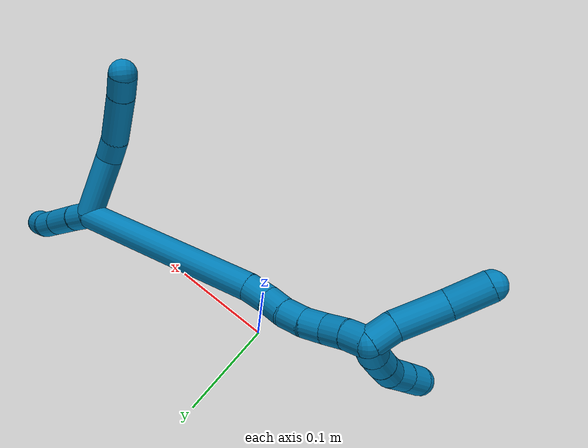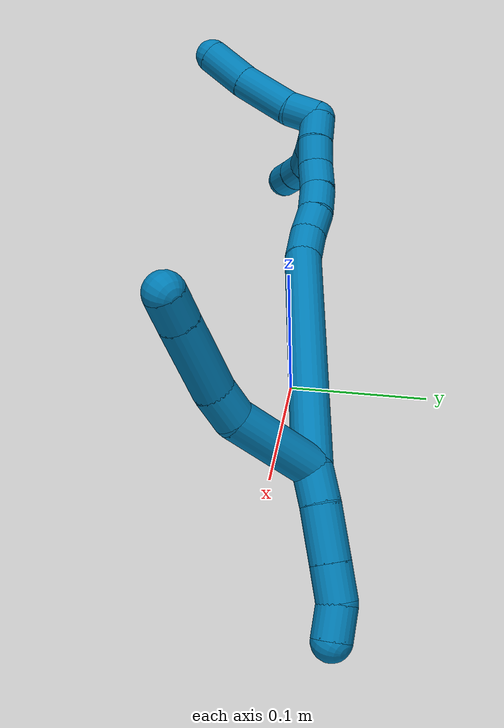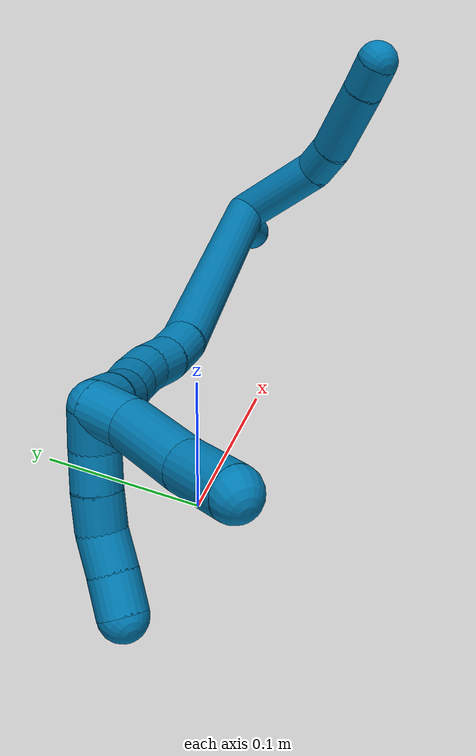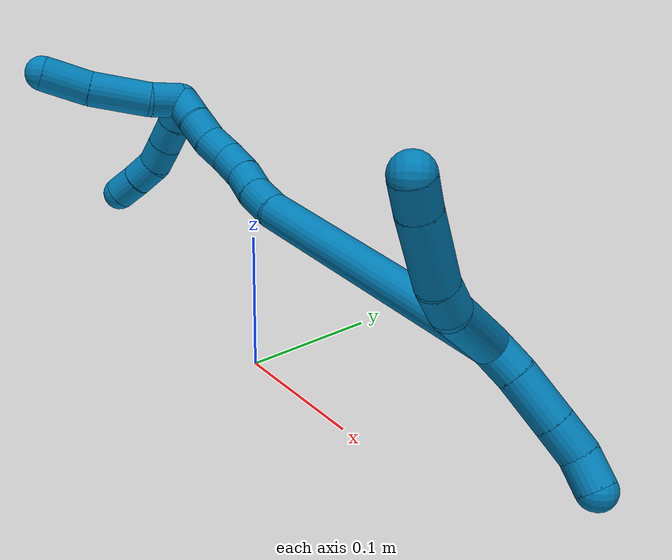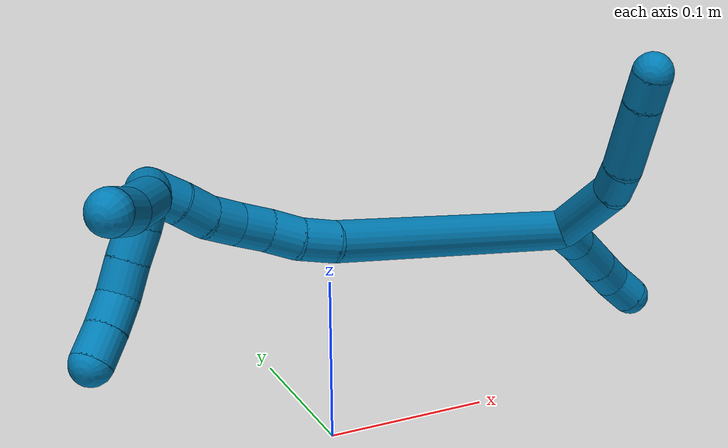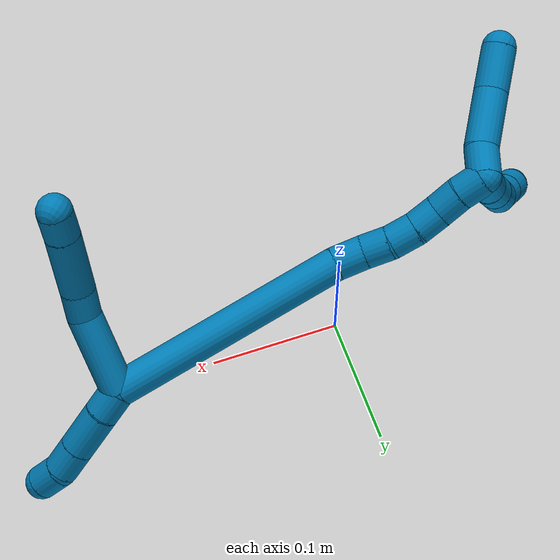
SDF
<sdf version="1.7">
 <world name="default">
  <model name="9">
   <static>0</static>
   <link name="9">
    <collision name="collision-cylinder-e_1_2_8">
     <pose>0.00694 -0.025617 -0.013112 2.04388 0.23663 0.383974</pose>
     <geometry><cylinder><radius>0.0125</radius><length>0.059206</length></cylinder></geometry>
     <surface>
      <friction><ode><mu>1.16</mu><mu2>1.16</mu2><slip1>0</slip1><slip2>0</slip2></ode></friction>
      <contact><ode><kp>1e+06</kp><kd>1</kd><max_vel>0</max_vel><min_depth>0.001</min_depth></ode></contact>
     </surface>
    </collision>
    <visual name="visual-cylinder-e_1_2_8">
     <pose>0.00694 -0.025617 -0.013112 2.04388 0.23663 0.383974</pose>
     <geometry><cylinder><radius>0.0125</radius><length>0.059206</length></cylinder></geometry>
     <material><ambient>0 0.490196 0.709804 1</ambient></material>
    </visual>
    <collision name="collision-cylinder-e_2_8_9">
     <pose>0.012888 -0.061169 -0.030332 1.96285 -0.091965 -0.137419</pose>
     <geometry><cylinder><radius>0.0125</radius><length>0.021592</length></cylinder></geometry>
     <surface>
      <friction><ode><mu>1.16</mu><mu2>1.16</mu2><slip1>0</slip1><slip2>0</slip2></ode></friction>
      <contact><ode><kp>1e+06</kp><kd>1</kd><max_vel>0</max_vel><min_depth>0.001</min_depth></ode></contact>
     </surface>
    </collision>
    <visual name="visual-cylinder-e_2_8_9">
     <pose>0.012888 -0.061169 -0.030332 1.96285 -0.091965 -0.137419</pose>
     <geometry><cylinder><radius>0.0125</radius><length>0.021592</length></cylinder></geometry>
     <material><ambient>0 0.490196 0.709804 1</ambient></material>
    </visual>
    <collision name="collision-cylinder-e_3_9_10">
     <pose>0.007114 -0.093911 -0.040374 1.82534 -0.200213 -0.258392</pose>
     <geometry><cylinder><radius>0.0125</radius><length>0.048094</length></cylinder></geometry>
     <surface>
      <friction><ode><mu>1.16</mu><mu2>1.16</mu2><slip1>0</slip1><slip2>0</slip2></ode></friction>
      <contact><ode><kp>1e+06</kp><kd>1</kd><max_vel>0</max_vel><min_depth>0.001</min_depth></ode></contact>
     </surface>
    </collision>
    <visual name="visual-cylinder-e_3_9_10">
     <pose>0.007114 -0.093911 -0.040374 1.82534 -0.200213 -0.258392</pose>
     <geometry><cylinder><radius>0.0125</radius><length>0.048094</length></cylinder></geometry>
     <material><ambient>0 0.490196 0.709804 1</ambient></material>
    </visual>
    <collision name="collision-cylinder-e_4_10_6">
     <pose>0.000243 -0.126847 -0.048413 1.77571 -0.199264 -0.244524</pose>
     <geometry><cylinder><radius>0.0125</radius><length>0.021108</length></cylinder></geometry>
     <surface>
      <friction><ode><mu>1.16</mu><mu2>1.16</mu2><slip1>0</slip1><slip2>0</slip2></ode></friction>
      <contact><ode><kp>1e+06</kp><kd>1</kd><max_vel>0</max_vel><min_depth>0.001</min_depth></ode></contact>
     </surface>
    </collision>
    <visual name="visual-cylinder-e_4_10_6">
     <pose>0.000243 -0.126847 -0.048413 1.77571 -0.199264 -0.244524</pose>
     <geometry><cylinder><radius>0.0125</radius><length>0.021108</length></cylinder></geometry>
     <material><ambient>0 0.490196 0.709804 1</ambient></material>
    </visual>
    <collision name="collision-cylinder-e_1_2_11">
     <pose>0.006203 0.004702 0.007767 -0.544374 0.599309 -0.172043</pose>
     <geometry><cylinder><radius>0.0125</radius><length>0.021992</length></cylinder></geometry>
     <surface>
      <friction><ode><mu>1.16</mu><mu2>1.16</mu2><slip1>0</slip1><slip2>0</slip2></ode></friction>
      <contact><ode><kp>1e+06</kp><kd>1</kd><max_vel>0</max_vel><min_depth>0.001</min_depth></ode></contact>
     </surface>
    </collision>
    <visual name="visual-cylinder-e_1_2_11">
     <pose>0.006203 0.004702 0.007767 -0.544374 0.599309 -0.172043</pose>
     <geometry><cylinder><radius>0.0125</radius><length>0.021992</length></cylinder></geometry>
     <material><ambient>0 0.490196 0.709804 1</ambient></material>
    </visual>
    <collision name="collision-cylinder-e_2_11_12">
     <pose>0.022572 0.017497 0.02645 -0.63794 0.642358 -0.218867</pose>
     <geometry><cylinder><radius>0.0125</radius><length>0.033941</length></cylinder></geometry>
     <surface>
      <friction><ode><mu>1.16</mu><mu2>1.16</mu2><slip1>0</slip1><slip2>0</slip2></ode></friction>
      <contact><ode><kp>1e+06</kp><kd>1</kd><max_vel>0</max_vel><min_depth>0.001</min_depth></ode></contact>
     </surface>
    </collision>
    <visual name="visual-cylinder-e_2_11_12">
     <pose>0.022572 0.017497 0.02645 -0.63794 0.642358 -0.218867</pose>
     <geometry><cylinder><radius>0.0125</radius><length>0.033941</length></cylinder></geometry>
     <material><ambient>0 0.490196 0.709804 1</ambient></material>
    </visual>
    <collision name="collision-cylinder-e_3_12_13">
     <pose>0.039698 0.03109 0.044749 -0.640301 0.647201 -0.221491</pose>
     <geometry><cylinder><radius>0.0125</radius><length>0.023082</length></cylinder></geometry>
     <surface>
      <friction><ode><mu>1.16</mu><mu2>1.16</mu2><slip1>0</slip1><slip2>0</slip2></ode></friction>
      <contact><ode><kp>1e+06</kp><kd>1</kd><max_vel>0</max_vel><min_depth>0.001</min_depth></ode></contact>
     </surface>
    </collision>
    <visual name="visual-cylinder-e_3_12_13">
     <pose>0.039698 0.03109 0.044749 -0.640301 0.647201 -0.221491</pose>
     <geometry><cylinder><radius>0.0125</radius><length>0.023082</length></cylinder></geometry>
     <material><ambient>0 0.490196 0.709804 1</ambient></material>
    </visual>
    <collision name="collision-cylinder-e_4_13_5">
     <pose>0.055307 0.040361 0.056719 -0.688153 0.969307 -0.372966</pose>
     <geometry><cylinder><radius>0.0125</radius><length>0.020984</length></cylinder></geometry>
     <surface>
      <friction><ode><mu>1.16</mu><mu2>1.16</mu2><slip1>0</slip1><slip2>0</slip2></ode></friction>
      <contact><ode><kp>1e+06</kp><kd>1</kd><max_vel>0</max_vel><min_depth>0.001</min_depth></ode></contact>
     </surface>
    </collision>
    <visual name="visual-cylinder-e_4_13_5">
     <pose>0.055307 0.040361 0.056719 -0.688153 0.969307 -0.372966</pose>
     <geometry><cylinder><radius>0.0125</radius><length>0.020984</length></cylinder></geometry>
     <material><ambient>0 0.490196 0.709804 1</ambient></material>
    </visual>
    <collision name="collision-cylinder-e_1_2_14">
     <pose>-0.055523 0.008869 -0.068475 -3.01278 -0.677256 2.77936</pose>
     <geometry><cylinder><radius>0.0125</radius><length>0.177204</length></cylinder></geometry>
     <surface>
      <friction><ode><mu>1.16</mu><mu2>1.16</mu2><slip1>0</slip1><slip2>0</slip2></ode></friction>
      <contact><ode><kp>1e+06</kp><kd>1</kd><max_vel>0</max_vel><min_depth>0.001</min_depth></ode></contact>
     </surface>
    </collision>
    <visual name="visual-cylinder-e_1_2_14">
     <pose>-0.055523 0.008869 -0.068475 -3.01278 -0.677256 2.77936</pose>
     <geometry><cylinder><radius>0.0125</radius><length>0.177204</length></cylinder></geometry>
     <material><ambient>0 0.490196 0.709804 1</ambient></material>
    </visual>
    <collision name="collision-cylinder-e_2_14_15">
     <pose>-0.11959 0.018881 -0.144133 -2.98388 -0.865608 2.80281</pose>
     <geometry><cylinder><radius>0.0125</radius><length>0.02244</length></cylinder></geometry>
     <surface>
      <friction><ode><mu>1.16</mu><mu2>1.16</mu2><slip1>0</slip1><slip2>0</slip2></ode></friction>
      <contact><ode><kp>1e+06</kp><kd>1</kd><max_vel>0</max_vel><min_depth>0.001</min_depth></ode></contact>
     </surface>
    </collision>
    <visual name="visual-cylinder-e_2_14_15">
     <pose>-0.11959 0.018881 -0.144133 -2.98388 -0.865608 2.80281</pose>
     <geometry><cylinder><radius>0.0125</radius><length>0.02244</length></cylinder></geometry>
     <material><ambient>0 0.490196 0.709804 1</ambient></material>
    </visual>
    <collision name="collision-cylinder-e_3_15_16">
     <pose>-0.136757 0.020062 -0.15642 -3.13411 -1.03619 3.12847</pose>
     <geometry><cylinder><radius>0.0125</radius><length>0.020041</length></cylinder></geometry>
     <surface>
      <friction><ode><mu>1.16</mu><mu2>1.16</mu2><slip1>0</slip1><slip2>0</slip2></ode></friction>
      <contact><ode><kp>1e+06</kp><kd>1</kd><max_vel>0</max_vel><min_depth>0.001</min_depth></ode></contact>
     </surface>
    </collision>
    <visual name="visual-cylinder-e_3_15_16">
     <pose>-0.136757 0.020062 -0.15642 -3.13411 -1.03619 3.12847</pose>
     <geometry><cylinder><radius>0.0125</radius><length>0.020041</length></cylinder></geometry>
     <material><ambient>0 0.490196 0.709804 1</ambient></material>
    </visual>
    <collision name="collision-cylinder-e_4_16_17">
     <pose>-0.152986 0.019695 -0.168173 3.08074 -0.851718 -3.00761</pose>
     <geometry><cylinder><radius>0.0125</radius><length>0.020221</length></cylinder></geometry>
     <surface>
      <friction><ode><mu>1.16</mu><mu2>1.16</mu2><slip1>0</slip1><slip2>0</slip2></ode></friction>
      <contact><ode><kp>1e+06</kp><kd>1</kd><max_vel>0</max_vel><min_depth>0.001</min_depth></ode></contact>
     </surface>
    </collision>
    <visual name="visual-cylinder-e_4_16_17">
     <pose>-0.152986 0.019695 -0.168173 3.08074 -0.851718 -3.00761</pose>
     <geometry><cylinder><radius>0.0125</radius><length>0.020221</length></cylinder></geometry>
     <material><ambient>0 0.490196 0.709804 1</ambient></material>
    </visual>
    <collision name="collision-cylinder-e_5_17_18">
     <pose>-0.167249 0.017859 -0.182174 2.94937 -0.726333 -2.64468</pose>
     <geometry><cylinder><radius>0.0125</radius><length>0.020041</length></cylinder></geometry>
     <surface>
      <friction><ode><mu>1.16</mu><mu2>1.16</mu2><slip1>0</slip1><slip2>0</slip2></ode></friction>
      <contact><ode><kp>1e+06</kp><kd>1</kd><max_vel>0</max_vel><min_depth>0.001</min_depth></ode></contact>
     </surface>
    </collision>
    <visual name="visual-cylinder-e_5_17_18">
     <pose>-0.167249 0.017859 -0.182174 2.94937 -0.726333 -2.64468</pose>
     <geometry><cylinder><radius>0.0125</radius><length>0.020041</length></cylinder></geometry>
     <material><ambient>0 0.490196 0.709804 1</ambient></material>
    </visual>
    <collision name="collision-cylinder-e_6_18_19">
     <pose>-0.181175 0.01343 -0.195723 2.69098 -0.812889 -2.16296</pose>
     <geometry><cylinder><radius>0.0125</radius><length>0.020024</length></cylinder></geometry>
     <surface>
      <friction><ode><mu>1.16</mu><mu2>1.16</mu2><slip1>0</slip1><slip2>0</slip2></ode></friction>
      <contact><ode><kp>1e+06</kp><kd>1</kd><max_vel>0</max_vel><min_depth>0.001</min_depth></ode></contact>
     </surface>
    </collision>
    <visual name="visual-cylinder-e_6_18_19">
     <pose>-0.181175 0.01343 -0.195723 2.69098 -0.812889 -2.16296</pose>
     <geometry><cylinder><radius>0.0125</radius><length>0.020024</length></cylinder></geometry>
     <material><ambient>0 0.490196 0.709804 1</ambient></material>
    </visual>
    <collision name="collision-cylinder-e_7_19_1">
     <pose>-0.196271 0.008424 -0.207836 2.81431 -0.896786 -2.48034</pose>
     <geometry><cylinder><radius>0.0125</radius><length>0.020028</length></cylinder></geometry>
     <surface>
      <friction><ode><mu>1.16</mu><mu2>1.16</mu2><slip1>0</slip1><slip2>0</slip2></ode></friction>
      <contact><ode><kp>1e+06</kp><kd>1</kd><max_vel>0</max_vel><min_depth>0.001</min_depth></ode></contact>
     </surface>
    </collision>
    <visual name="visual-cylinder-e_7_19_1">
     <pose>-0.196271 0.008424 -0.207836 2.81431 -0.896786 -2.48034</pose>
     <geometry><cylinder><radius>0.0125</radius><length>0.020028</length></cylinder></geometry>
     <material><ambient>0 0.490196 0.709804 1</ambient></material>
    </visual>
    <collision name="collision-cylinder-e_1_1_20">
     <pose>-0.200428 0.002956 -0.22398 2.8155 0.327506 1.57519</pose>
     <geometry><cylinder><radius>0.0125</radius><length>0.022801</length></cylinder></geometry>
     <surface>
      <friction><ode><mu>1.16</mu><mu2>1.16</mu2><slip1>0</slip1><slip2>0</slip2></ode></friction>
      <contact><ode><kp>1e+06</kp><kd>1</kd><max_vel>0</max_vel><min_depth>0.001</min_depth></ode></contact>
     </surface>
    </collision>
    <visual name="visual-cylinder-e_1_1_20">
     <pose>-0.200428 0.002956 -0.22398 2.8155 0.327506 1.57519</pose>
     <geometry><cylinder><radius>0.0125</radius><length>0.022801</length></cylinder></geometry>
     <material><ambient>0 0.490196 0.709804 1</ambient></material>
    </visual>
    <collision name="collision-cylinder-e_2_20_21">
     <pose>-0.195005 -0.006641 -0.25493 2.85358 0.081037 0.545227</pose>
     <geometry><cylinder><radius>0.0125</radius><length>0.043371</length></cylinder></geometry>
     <surface>
      <friction><ode><mu>1.16</mu><mu2>1.16</mu2><slip1>0</slip1><slip2>0</slip2></ode></friction>
      <contact><ode><kp>1e+06</kp><kd>1</kd><max_vel>0</max_vel><min_depth>0.001</min_depth></ode></contact>
     </surface>
    </collision>
    <visual name="visual-cylinder-e_2_20_21">
     <pose>-0.195005 -0.006641 -0.25493 2.85358 0.081037 0.545227</pose>
     <geometry><cylinder><radius>0.0125</radius><length>0.043371</length></cylinder></geometry>
     <material><ambient>0 0.490196 0.709804 1</ambient></material>
    </visual>
    <collision name="collision-cylinder-e_3_21_4">
     <pose>-0.193106 -0.01953 -0.291162 2.73111 0.00849 0.040776</pose>
     <geometry><cylinder><radius>0.0125</radius><length>0.033828</length></cylinder></geometry>
     <surface>
      <friction><ode><mu>1.16</mu><mu2>1.16</mu2><slip1>0</slip1><slip2>0</slip2></ode></friction>
      <contact><ode><kp>1e+06</kp><kd>1</kd><max_vel>0</max_vel><min_depth>0.001</min_depth></ode></contact>
     </surface>
    </collision>
    <visual name="visual-cylinder-e_3_21_4">
     <pose>-0.193106 -0.01953 -0.291162 2.73111 0.00849 0.040776</pose>
     <geometry><cylinder><radius>0.0125</radius><length>0.033828</length></cylinder></geometry>
     <material><ambient>0 0.490196 0.709804 1</ambient></material>
    </visual>
    <collision name="collision-cylinder-e_1_1_22">
     <pose>-0.201402 0.015481 -0.217002 -1.91474 0.272676 -0.3849</pose>
     <geometry><cylinder><radius>0.0125</radius><length>0.02</length></cylinder></geometry>
     <surface>
      <friction><ode><mu>1.16</mu><mu2>1.16</mu2><slip1>0</slip1><slip2>0</slip2></ode></friction>
      <contact><ode><kp>1e+06</kp><kd>1</kd><max_vel>0</max_vel><min_depth>0.001</min_depth></ode></contact>
     </surface>
    </collision>
    <visual name="visual-cylinder-e_1_1_22">
     <pose>-0.201402 0.015481 -0.217002 -1.91474 0.272676 -0.3849</pose>
     <geometry><cylinder><radius>0.0125</radius><length>0.02</length></cylinder></geometry>
     <material><ambient>0 0.490196 0.709804 1</ambient></material>
    </visual>
    <collision name="collision-cylinder-e_2_22_23">
     <pose>-0.196536 0.033108 -0.22494 -2.07207 0.219061 -0.367133</pose>
     <geometry><cylinder><radius>0.0125</radius><length>0.02</length></cylinder></geometry>
     <surface>
      <friction><ode><mu>1.16</mu><mu2>1.16</mu2><slip1>0</slip1><slip2>0</slip2></ode></friction>
      <contact><ode><kp>1e+06</kp><kd>1</kd><max_vel>0</max_vel><min_depth>0.001</min_depth></ode></contact>
     </surface>
    </collision>
    <visual name="visual-cylinder-e_2_22_23">
     <pose>-0.196536 0.033108 -0.22494 -2.07207 0.219061 -0.367133</pose>
     <geometry><cylinder><radius>0.0125</radius><length>0.02</length></cylinder></geometry>
     <material><ambient>0 0.490196 0.709804 1</ambient></material>
    </visual>
    <collision name="collision-cylinder-e_3_23_24">
     <pose>-0.1916 0.050009 -0.234405 -2.09064 0.279866 -0.476594</pose>
     <geometry><cylinder><radius>0.0125</radius><length>0.02</length></cylinder></geometry>
     <surface>
      <friction><ode><mu>1.16</mu><mu2>1.16</mu2><slip1>0</slip1><slip2>0</slip2></ode></friction>
      <contact><ode><kp>1e+06</kp><kd>1</kd><max_vel>0</max_vel><min_depth>0.001</min_depth></ode></contact>
     </surface>
    </collision>
    <visual name="visual-cylinder-e_3_23_24">
     <pose>-0.1916 0.050009 -0.234405 -2.09064 0.279866 -0.476594</pose>
     <geometry><cylinder><radius>0.0125</radius><length>0.02</length></cylinder></geometry>
     <material><ambient>0 0.490196 0.709804 1</ambient></material>
    </visual>
    <collision name="collision-cylinder-e_4_24_25">
     <pose>-0.186327 0.064536 -0.246625 -2.44837 0.253822 -0.679159</pose>
     <geometry><cylinder><radius>0.0125</radius><length>0.02</length></cylinder></geometry>
     <surface>
      <friction><ode><mu>1.16</mu><mu2>1.16</mu2><slip1>0</slip1><slip2>0</slip2></ode></friction>
      <contact><ode><kp>1e+06</kp><kd>1</kd><max_vel>0</max_vel><min_depth>0.001</min_depth></ode></contact>
     </surface>
    </collision>
    <visual name="visual-cylinder-e_4_24_25">
     <pose>-0.186327 0.064536 -0.246625 -2.44837 0.253822 -0.679159</pose>
     <geometry><cylinder><radius>0.0125</radius><length>0.02</length></cylinder></geometry>
     <material><ambient>0 0.490196 0.709804 1</ambient></material>
    </visual>
    <collision name="collision-cylinder-e_5_25_3">
     <pose>-0.181816 0.076797 -0.261757 -2.47273 0.201337 -0.565783</pose>
     <geometry><cylinder><radius>0.0125</radius><length>0.02</length></cylinder></geometry>
     <surface>
      <friction><ode><mu>1.16</mu><mu2>1.16</mu2><slip1>0</slip1><slip2>0</slip2></ode></friction>
      <contact><ode><kp>1e+06</kp><kd>1</kd><max_vel>0</max_vel><min_depth>0.001</min_depth></ode></contact>
     </surface>
    </collision>
    <visual name="visual-cylinder-e_5_25_3">
     <pose>-0.181816 0.076797 -0.261757 -2.47273 0.201337 -0.565783</pose>
     <geometry><cylinder><radius>0.0125</radius><length>0.02</length></cylinder></geometry>
     <material><ambient>0 0.490196 0.709804 1</ambient></material>
    </visual>
    <collision name="collision-sphere-3">
     <pose>-0.179816 0.082873 -0.269444 0 -0 0</pose>
     <geometry><sphere><radius>0.0125</radius></sphere></geometry>
     <surface>
      <friction><ode><mu>1.16</mu><mu2>1.16</mu2><slip1>0</slip1><slip2>0</slip2></ode></friction>
      <contact><ode><kp>1e+06</kp><kd>1</kd><max_vel>0</max_vel><min_depth>0.001</min_depth></ode></contact>
     </surface>
    </collision>
    <visual name="visual-sphere-3">
     <pose>-0.179816 0.082873 -0.269444 0 -0 0</pose>
     <geometry><sphere><radius>0.0125</radius></sphere></geometry>
     <material><ambient>0 0.490196 0.709804 1</ambient></material>
    </visual>
    <collision name="collision-sphere-25">
     <pose>-0.183816 0.070721 -0.25407 0 -0 0</pose>
     <geometry><sphere><radius>0.0125</radius></sphere></geometry>
     <surface>
      <friction><ode><mu>1.16</mu><mu2>1.16</mu2><slip1>0</slip1><slip2>0</slip2></ode></friction>
      <contact><ode><kp>1e+06</kp><kd>1</kd><max_vel>0</max_vel><min_depth>0.001</min_depth></ode></contact>
     </surface>
    </collision>
    <visual name="visual-sphere-25">
     <pose>-0.183816 0.070721 -0.25407 0 -0 0</pose>
     <geometry><sphere><radius>0.0125</radius></sphere></geometry>
     <material><ambient>0 0.490196 0.709804 1</ambient></material>
    </visual>
    <collision name="collision-sphere-24">
     <pose>-0.188838 0.05835 -0.239179 0 -0 0</pose>
     <geometry><sphere><radius>0.0125</radius></sphere></geometry>
     <surface>
      <friction><ode><mu>1.16</mu><mu2>1.16</mu2><slip1>0</slip1><slip2>0</slip2></ode></friction>
      <contact><ode><kp>1e+06</kp><kd>1</kd><max_vel>0</max_vel><min_depth>0.001</min_depth></ode></contact>
     </surface>
    </collision>
    <visual name="visual-sphere-24">
     <pose>-0.188838 0.05835 -0.239179 0 -0 0</pose>
     <geometry><sphere><radius>0.0125</radius></sphere></geometry>
     <material><ambient>0 0.490196 0.709804 1</ambient></material>
    </visual>
    <collision name="collision-sphere-23">
     <pose>-0.194363 0.041668 -0.229631 0 -0 0</pose>
     <geometry><sphere><radius>0.0125</radius></sphere></geometry>
     <surface>
      <friction><ode><mu>1.16</mu><mu2>1.16</mu2><slip1>0</slip1><slip2>0</slip2></ode></friction>
      <contact><ode><kp>1e+06</kp><kd>1</kd><max_vel>0</max_vel><min_depth>0.001</min_depth></ode></contact>
     </surface>
    </collision>
    <visual name="visual-sphere-23">
     <pose>-0.194363 0.041668 -0.229631 0 -0 0</pose>
     <geometry><sphere><radius>0.0125</radius></sphere></geometry>
     <material><ambient>0 0.490196 0.709804 1</ambient></material>
    </visual>
    <collision name="collision-sphere-22">
     <pose>-0.198709 0.024547 -0.22025 0 -0 0</pose>
     <geometry><sphere><radius>0.0125</radius></sphere></geometry>
     <surface>
      <friction><ode><mu>1.16</mu><mu2>1.16</mu2><slip1>0</slip1><slip2>0</slip2></ode></friction>
      <contact><ode><kp>1e+06</kp><kd>1</kd><max_vel>0</max_vel><min_depth>0.001</min_depth></ode></contact>
     </surface>
    </collision>
    <visual name="visual-sphere-22">
     <pose>-0.198709 0.024547 -0.22025 0 -0 0</pose>
     <geometry><sphere><radius>0.0125</radius></sphere></geometry>
     <material><ambient>0 0.490196 0.709804 1</ambient></material>
    </visual>
    <collision name="collision-sphere-4">
     <pose>-0.192963 -0.026279 -0.306671 0 -0 0</pose>
     <geometry><sphere><radius>0.0125</radius></sphere></geometry>
     <surface>
      <friction><ode><mu>1.16</mu><mu2>1.16</mu2><slip1>0</slip1><slip2>0</slip2></ode></friction>
      <contact><ode><kp>1e+06</kp><kd>1</kd><max_vel>0</max_vel><min_depth>0.001</min_depth></ode></contact>
     </surface>
    </collision>
    <visual name="visual-sphere-4">
     <pose>-0.192963 -0.026279 -0.306671 0 -0 0</pose>
     <geometry><sphere><radius>0.0125</radius></sphere></geometry>
     <material><ambient>0 0.490196 0.709804 1</ambient></material>
    </visual>
    <collision name="collision-sphere-21">
     <pose>-0.19325 -0.01278 -0.275654 0 -0 0</pose>
     <geometry><sphere><radius>0.0125</radius></sphere></geometry>
     <surface>
      <friction><ode><mu>1.16</mu><mu2>1.16</mu2><slip1>0</slip1><slip2>0</slip2></ode></friction>
      <contact><ode><kp>1e+06</kp><kd>1</kd><max_vel>0</max_vel><min_depth>0.001</min_depth></ode></contact>
     </surface>
    </collision>
    <visual name="visual-sphere-21">
     <pose>-0.19325 -0.01278 -0.275654 0 -0 0</pose>
     <geometry><sphere><radius>0.0125</radius></sphere></geometry>
     <material><ambient>0 0.490196 0.709804 1</ambient></material>
    </visual>
    <collision name="collision-sphere-20">
     <pose>-0.196761 -0.000502 -0.234206 0 -0 0</pose>
     <geometry><sphere><radius>0.0125</radius></sphere></geometry>
     <surface>
      <friction><ode><mu>1.16</mu><mu2>1.16</mu2><slip1>0</slip1><slip2>0</slip2></ode></friction>
      <contact><ode><kp>1e+06</kp><kd>1</kd><max_vel>0</max_vel><min_depth>0.001</min_depth></ode></contact>
     </surface>
    </collision>
    <visual name="visual-sphere-20">
     <pose>-0.196761 -0.000502 -0.234206 0 -0 0</pose>
     <geometry><sphere><radius>0.0125</radius></sphere></geometry>
     <material><ambient>0 0.490196 0.709804 1</ambient></material>
    </visual>
    <collision name="collision-sphere-11">
     <pose>0.012405 0.009404 0.015535 0 -0 0</pose>
     <geometry><sphere><radius>0.0125</radius></sphere></geometry>
     <surface>
      <friction><ode><mu>1.16</mu><mu2>1.16</mu2><slip1>0</slip1><slip2>0</slip2></ode></friction>
      <contact><ode><kp>1e+06</kp><kd>1</kd><max_vel>0</max_vel><min_depth>0.001</min_depth></ode></contact>
     </surface>
    </collision>
    <visual name="visual-sphere-11">
     <pose>0.012405 0.009404 0.015535 0 -0 0</pose>
     <geometry><sphere><radius>0.0125</radius></sphere></geometry>
     <material><ambient>0 0.490196 0.709804 1</ambient></material>
    </visual>
    <collision name="collision-sphere-6">
     <pose>-0.001846 -0.136976 -0.050518 0 -0 0</pose>
     <geometry><sphere><radius>0.0125</radius></sphere></geometry>
     <surface>
      <friction><ode><mu>1.16</mu><mu2>1.16</mu2><slip1>0</slip1><slip2>0</slip2></ode></friction>
      <contact><ode><kp>1e+06</kp><kd>1</kd><max_vel>0</max_vel><min_depth>0.001</min_depth></ode></contact>
     </surface>
    </collision>
    <visual name="visual-sphere-6">
     <pose>-0.001846 -0.136976 -0.050518 0 -0 0</pose>
     <geometry><sphere><radius>0.0125</radius></sphere></geometry>
     <material><ambient>0 0.490196 0.709804 1</ambient></material>
    </visual>
    <collision name="collision-sphere-10">
     <pose>0.002332 -0.116719 -0.046308 0 -0 0</pose>
     <geometry><sphere><radius>0.0125</radius></sphere></geometry>
     <surface>
      <friction><ode><mu>1.16</mu><mu2>1.16</mu2><slip1>0</slip1><slip2>0</slip2></ode></friction>
      <contact><ode><kp>1e+06</kp><kd>1</kd><max_vel>0</max_vel><min_depth>0.001</min_depth></ode></contact>
     </surface>
    </collision>
    <visual name="visual-sphere-10">
     <pose>0.002332 -0.116719 -0.046308 0 -0 0</pose>
     <geometry><sphere><radius>0.0125</radius></sphere></geometry>
     <material><ambient>0 0.490196 0.709804 1</ambient></material>
    </visual>
    <collision name="collision-sphere-9">
     <pose>0.011897 -0.071104 -0.03444 0 -0 0</pose>
     <geometry><sphere><radius>0.0125</radius></sphere></geometry>
     <surface>
      <friction><ode><mu>1.16</mu><mu2>1.16</mu2><slip1>0</slip1><slip2>0</slip2></ode></friction>
      <contact><ode><kp>1e+06</kp><kd>1</kd><max_vel>0</max_vel><min_depth>0.001</min_depth></ode></contact>
     </surface>
    </collision>
    <visual name="visual-sphere-9">
     <pose>0.011897 -0.071104 -0.03444 0 -0 0</pose>
     <geometry><sphere><radius>0.0125</radius></sphere></geometry>
     <material><ambient>0 0.490196 0.709804 1</ambient></material>
    </visual>
    <collision name="collision-sphere-2">
     <geometry><sphere><radius>0.0125</radius></sphere></geometry>
     <surface>
      <friction><ode><mu>1.16</mu><mu2>1.16</mu2><slip1>0</slip1><slip2>0</slip2></ode></friction>
      <contact><ode><kp>1e+06</kp><kd>1</kd><max_vel>0</max_vel><min_depth>0.001</min_depth></ode></contact>
     </surface>
    </collision>
    <visual name="visual-sphere-2">
     <geometry><sphere><radius>0.0125</radius></sphere></geometry>
     <material><ambient>0 0.490196 0.709804 1</ambient></material>
    </visual>
    <collision name="collision-sphere-19">
     <pose>-0.188447 0.010433 -0.201918 0 -0 0</pose>
     <geometry><sphere><radius>0.0125</radius></sphere></geometry>
     <surface>
      <friction><ode><mu>1.16</mu><mu2>1.16</mu2><slip1>0</slip1><slip2>0</slip2></ode></friction>
      <contact><ode><kp>1e+06</kp><kd>1</kd><max_vel>0</max_vel><min_depth>0.001</min_depth></ode></contact>
     </surface>
    </collision>
    <visual name="visual-sphere-19">
     <pose>-0.188447 0.010433 -0.201918 0 -0 0</pose>
     <geometry><sphere><radius>0.0125</radius></sphere></geometry>
     <material><ambient>0 0.490196 0.709804 1</ambient></material>
    </visual>
    <collision name="collision-sphere-8">
     <pose>0.01388 -0.051235 -0.026225 0 -0 0</pose>
     <geometry><sphere><radius>0.0125</radius></sphere></geometry>
     <surface>
      <friction><ode><mu>1.16</mu><mu2>1.16</mu2><slip1>0</slip1><slip2>0</slip2></ode></friction>
      <contact><ode><kp>1e+06</kp><kd>1</kd><max_vel>0</max_vel><min_depth>0.001</min_depth></ode></contact>
     </surface>
    </collision>
    <visual name="visual-sphere-8">
     <pose>0.01388 -0.051235 -0.026225 0 -0 0</pose>
     <geometry><sphere><radius>0.0125</radius></sphere></geometry>
     <material><ambient>0 0.490196 0.709804 1</ambient></material>
    </visual>
    <collision name="collision-sphere-12">
     <pose>0.032739 0.025589 0.037366 0 -0 0</pose>
     <geometry><sphere><radius>0.0125</radius></sphere></geometry>
     <surface>
      <friction><ode><mu>1.16</mu><mu2>1.16</mu2><slip1>0</slip1><slip2>0</slip2></ode></friction>
      <contact><ode><kp>1e+06</kp><kd>1</kd><max_vel>0</max_vel><min_depth>0.001</min_depth></ode></contact>
     </surface>
    </collision>
    <visual name="visual-sphere-12">
     <pose>0.032739 0.025589 0.037366 0 -0 0</pose>
     <geometry><sphere><radius>0.0125</radius></sphere></geometry>
     <material><ambient>0 0.490196 0.709804 1</ambient></material>
    </visual>
    <collision name="collision-sphere-13">
     <pose>0.046656 0.03659 0.052133 0 -0 0</pose>
     <geometry><sphere><radius>0.0125</radius></sphere></geometry>
     <surface>
      <friction><ode><mu>1.16</mu><mu2>1.16</mu2><slip1>0</slip1><slip2>0</slip2></ode></friction>
      <contact><ode><kp>1e+06</kp><kd>1</kd><max_vel>0</max_vel><min_depth>0.001</min_depth></ode></contact>
     </surface>
    </collision>
    <visual name="visual-sphere-13">
     <pose>0.046656 0.03659 0.052133 0 -0 0</pose>
     <geometry><sphere><radius>0.0125</radius></sphere></geometry>
     <material><ambient>0 0.490196 0.709804 1</ambient></material>
    </visual>
    <collision name="collision-sphere-5">
     <pose>0.063958 0.044132 0.061305 0 -0 0</pose>
     <geometry><sphere><radius>0.0125</radius></sphere></geometry>
     <surface>
      <friction><ode><mu>1.16</mu><mu2>1.16</mu2><slip1>0</slip1><slip2>0</slip2></ode></friction>
      <contact><ode><kp>1e+06</kp><kd>1</kd><max_vel>0</max_vel><min_depth>0.001</min_depth></ode></contact>
     </surface>
    </collision>
    <visual name="visual-sphere-5">
     <pose>0.063958 0.044132 0.061305 0 -0 0</pose>
     <geometry><sphere><radius>0.0125</radius></sphere></geometry>
     <material><ambient>0 0.490196 0.709804 1</ambient></material>
    </visual>
    <collision name="collision-sphere-14">
     <pose>-0.111046 0.017739 -0.13695 0 -0 0</pose>
     <geometry><sphere><radius>0.0125</radius></sphere></geometry>
     <surface>
      <friction><ode><mu>1.16</mu><mu2>1.16</mu2><slip1>0</slip1><slip2>0</slip2></ode></friction>
      <contact><ode><kp>1e+06</kp><kd>1</kd><max_vel>0</max_vel><min_depth>0.001</min_depth></ode></contact>
     </surface>
    </collision>
    <visual name="visual-sphere-14">
     <pose>-0.111046 0.017739 -0.13695 0 -0 0</pose>
     <geometry><sphere><radius>0.0125</radius></sphere></geometry>
     <material><ambient>0 0.490196 0.709804 1</ambient></material>
    </visual>
    <collision name="collision-sphere-15">
     <pose>-0.128134 0.020023 -0.151315 0 -0 0</pose>
     <geometry><sphere><radius>0.0125</radius></sphere></geometry>
     <surface>
      <friction><ode><mu>1.16</mu><mu2>1.16</mu2><slip1>0</slip1><slip2>0</slip2></ode></friction>
      <contact><ode><kp>1e+06</kp><kd>1</kd><max_vel>0</max_vel><min_depth>0.001</min_depth></ode></contact>
     </surface>
    </collision>
    <visual name="visual-sphere-15">
     <pose>-0.128134 0.020023 -0.151315 0 -0 0</pose>
     <geometry><sphere><radius>0.0125</radius></sphere></geometry>
     <material><ambient>0 0.490196 0.709804 1</ambient></material>
    </visual>
    <collision name="collision-sphere-16">
     <pose>-0.145379 0.0201 -0.161526 0 -0 0</pose>
     <geometry><sphere><radius>0.0125</radius></sphere></geometry>
     <surface>
      <friction><ode><mu>1.16</mu><mu2>1.16</mu2><slip1>0</slip1><slip2>0</slip2></ode></friction>
      <contact><ode><kp>1e+06</kp><kd>1</kd><max_vel>0</max_vel><min_depth>0.001</min_depth></ode></contact>
     </surface>
    </collision>
    <visual name="visual-sphere-16">
     <pose>-0.145379 0.0201 -0.161526 0 -0 0</pose>
     <geometry><sphere><radius>0.0125</radius></sphere></geometry>
     <material><ambient>0 0.490196 0.709804 1</ambient></material>
    </visual>
    <collision name="collision-sphere-17">
     <pose>-0.160594 0.01929 -0.17482 0 -0 0</pose>
     <geometry><sphere><radius>0.0125</radius></sphere></geometry>
     <surface>
      <friction><ode><mu>1.16</mu><mu2>1.16</mu2><slip1>0</slip1><slip2>0</slip2></ode></friction>
      <contact><ode><kp>1e+06</kp><kd>1</kd><max_vel>0</max_vel><min_depth>0.001</min_depth></ode></contact>
     </surface>
    </collision>
    <visual name="visual-sphere-17">
     <pose>-0.160594 0.01929 -0.17482 0 -0 0</pose>
     <geometry><sphere><radius>0.0125</radius></sphere></geometry>
     <material><ambient>0 0.490196 0.709804 1</ambient></material>
    </visual>
    <collision name="collision-sphere-18">
     <pose>-0.173904 0.016427 -0.189528 0 -0 0</pose>
     <geometry><sphere><radius>0.0125</radius></sphere></geometry>
     <surface>
      <friction><ode><mu>1.16</mu><mu2>1.16</mu2><slip1>0</slip1><slip2>0</slip2></ode></friction>
      <contact><ode><kp>1e+06</kp><kd>1</kd><max_vel>0</max_vel><min_depth>0.001</min_depth></ode></contact>
     </surface>
    </collision>
    <visual name="visual-sphere-18">
     <pose>-0.173904 0.016427 -0.189528 0 -0 0</pose>
     <geometry><sphere><radius>0.0125</radius></sphere></geometry>
     <material><ambient>0 0.490196 0.709804 1</ambient></material>
    </visual>
    <collision name="collision-sphere-1">
     <pose>-0.204095 0.006414 -0.213755 0 -0 0</pose>
     <geometry><sphere><radius>0.0125</radius></sphere></geometry>
     <surface>
      <friction><ode><mu>1.16</mu><mu2>1.16</mu2><slip1>0</slip1><slip2>0</slip2></ode></friction>
      <contact><ode><kp>1e+06</kp><kd>1</kd><max_vel>0</max_vel><min_depth>0.001</min_depth></ode></contact>
     </surface>
    </collision>
    <visual name="visual-sphere-1">
     <pose>-0.204095 0.006414 -0.213755 0 -0 0</pose>
     <geometry><sphere><radius>0.0125</radius></sphere></geometry>
     <material><ambient>0 0.490196 0.709804 1</ambient></material>
    </visual>
    <inertial>
     <pose>-0.085287 -0.000348 -0.112597 0 -0 0</pose>
     <mass>0.75</mass>
     <inertia>
      <ixx>-0.000166</ixx>
      <ixy>0</ixy>
      <ixz>0</ixz>
      <iyy>0.000573</iyy>
      <iyz>0</iyz>
      <izz>0.000242</izz>
     </inertia>
    </inertial>
   </link>
   <pose>0.179676 0.040225 0.08744 -1.56353 0.457783 -0.735804</pose>
  </model>
 </world>
</sdf>
